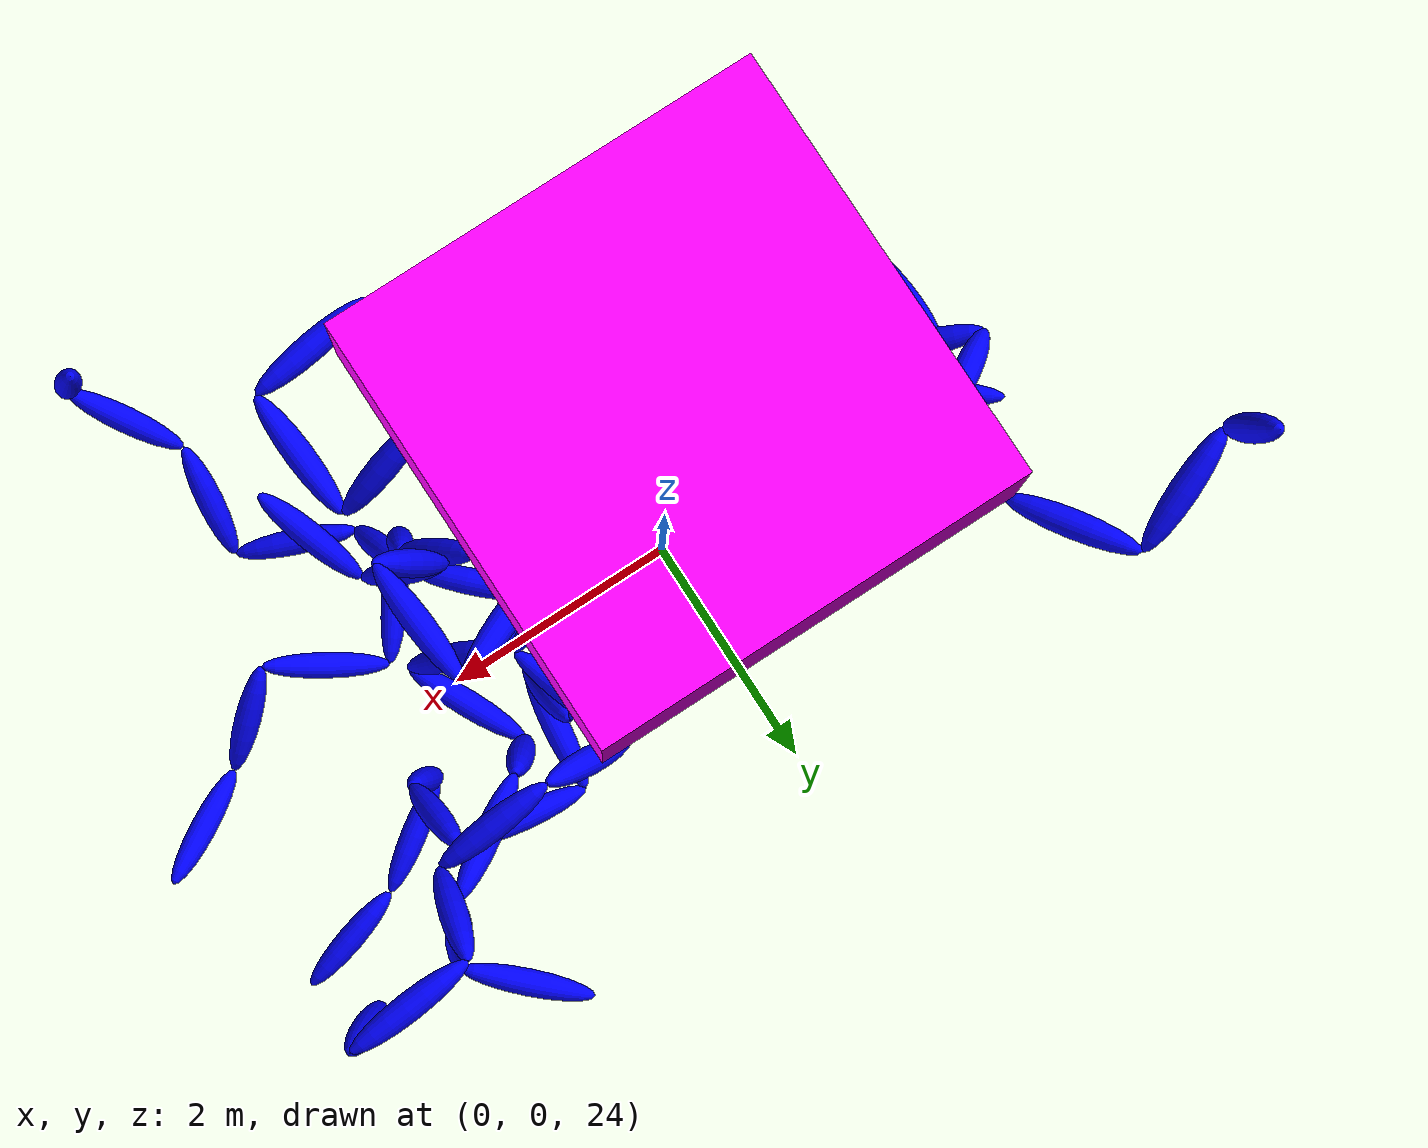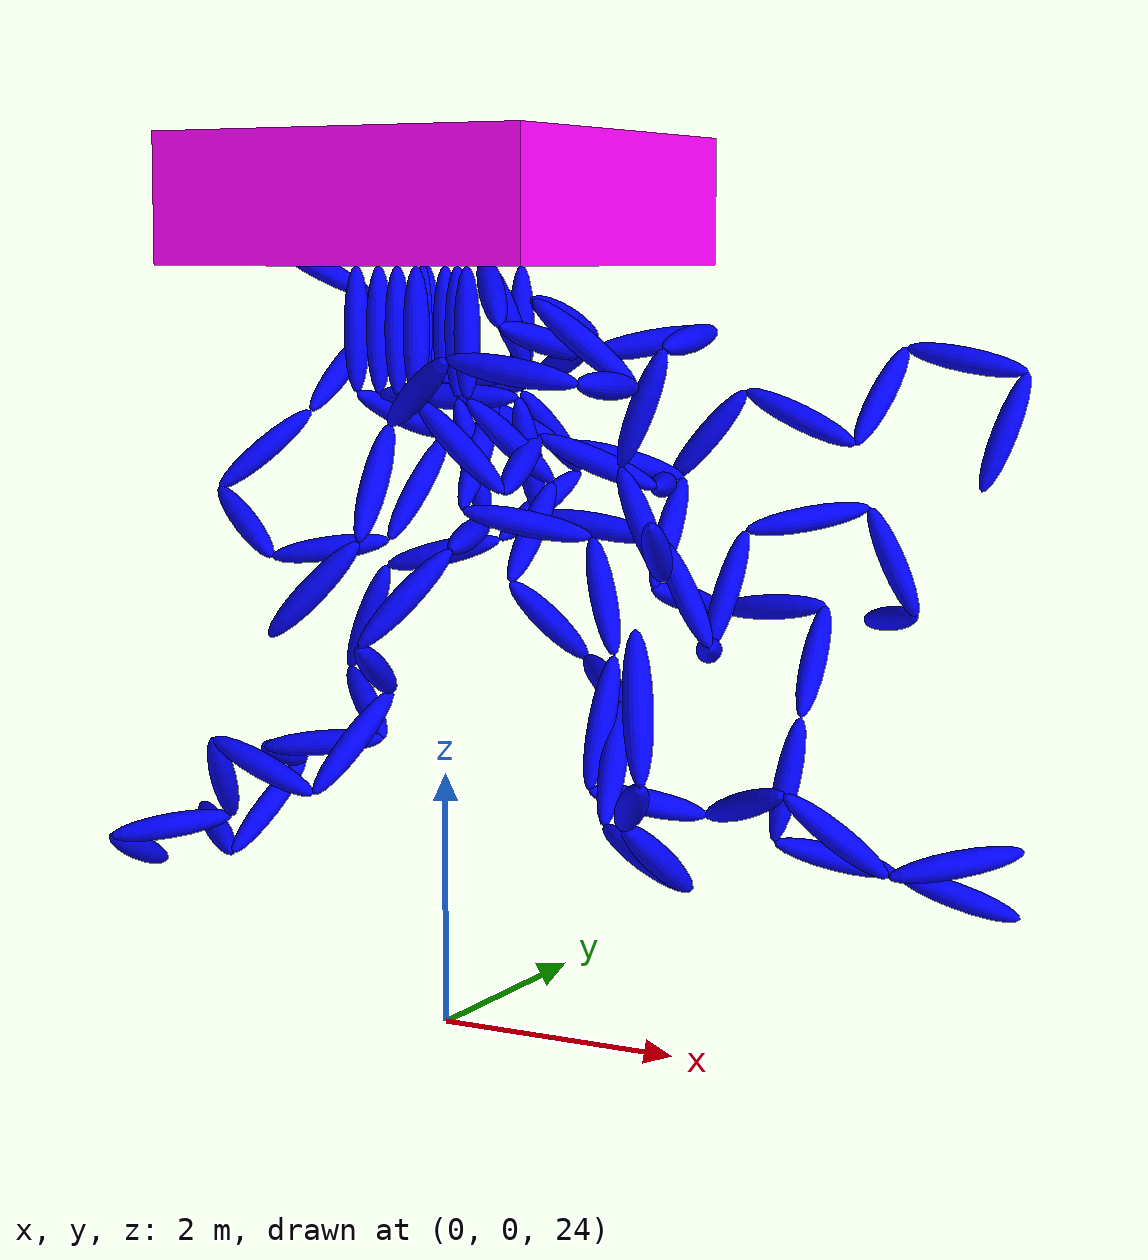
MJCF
<mujoco model="the_beginning">
<visual>
<headlight ambient="0.5 0.5 0.5"/>
</visual>
<option timestep="0.01" density="1000" viscosity="1.002e-3"/>

<worldbody>
<light diffuse=".5 .5 .5" pos="0 0 3" dir="0 0 -1"/>
<geom type="plane" size="20 20 0.1" rgba="0 .8 .2 1"/>

<body pos="0 0 30"  euler="0 0 0">
<joint type="free" axis="-1 0 0" pos="0 0 -0.5"/>
<geom type="box" size="1.58" fromto="0 0 0 0 0 1" rgba="225 0 225 1" mass="1"/>

    <body pos="-0.7457344250318846 -0.08247455923980451 0" euler="180 0 0">
        <joint name="1_elbow" type="hinge" axis="-1 0 0" pos="0 0 0" range="-50 50"/>
        <geom type="ellipsoid" size="0.1" fromto="0 0 0 0 0 1" rgba="0 0 1 1"/>

        <body pos="0 0 1" euler="67 17 86">
            <joint name="1_elbow1" type="hinge" axis="-1 0 0" pos="0 0 0" range="-50 50"/>
            <geom type="ellipsoid" size="0.1" fromto="0 0 0 0 0 1" rgba="0 0 1 1"/>

        <body pos="0 0 1" euler="49 109 31">
            <joint name="1_elbow2" type="hinge" axis="-1 0 0" pos="0 0 0" range="-50 50"/>
            <geom type="ellipsoid" size="0.1" fromto="0 0 0 0 0 1" rgba="0 0 1 1"/>

        <body pos="0 0 1" euler="27 56 23">
            <joint name="1_elbow3" type="hinge" axis="-1 0 0" pos="0 0 0" range="-50 50"/>
            <geom type="ellipsoid" size="0.1" fromto="0 0 0 0 0 1" rgba="0 0 1 1"/>

        <body pos="0 0 1" euler="44 40 9">
            <joint name="1_elbow4" type="hinge" axis="-1 0 0" pos="0 0 0" range="-50 50"/>
            <geom type="ellipsoid" size="0.1" fromto="0 0 0 0 0 1" rgba="0 0 1 1"/>

        <body pos="0 0 1" euler="92 12 75">
            <joint name="1_elbow5" type="hinge" axis="-1 0 0" pos="0 0 0" range="-50 50"/>
            <geom type="ellipsoid" size="0.1" fromto="0 0 0 0 0 1" rgba="0 0 1 1"/>

        <body pos="0 0 1" euler="7 35 16">
            <joint name="1_elbow6" type="hinge" axis="-1 0 0" pos="0 0 0" range="-50 50"/>
            <geom type="ellipsoid" size="0.1" fromto="0 0 0 0 0 1" rgba="0 0 1 1"/>

        <body pos="0 0 1" euler="31 34 34">
            <joint name="1_elbow7" type="hinge" axis="-1 0 0" pos="0 0 0" range="-50 50"/>
            <geom type="ellipsoid" size="0.1" fromto="0 0 0 0 0 1" rgba="0 0 1 1"/>

        <body pos="0 0 1" euler="40 72 91">
            <joint name="1_elbow8" type="hinge" axis="-1 0 0" pos="0 0 0" range="-50 50"/>
            <geom type="ellipsoid" size="0.1" fromto="0 0 0 0 0 1" rgba="0 0 1 1"/>

        <body pos="0 0 1" euler="36 62 29">
            <joint name="1_elbow9" type="hinge" axis="-1 0 0" pos="0 0 0" range="-50 50"/>
            <geom type="ellipsoid" size="0.1" fromto="0 0 0 0 0 1" rgba="0 0 1 1"/>

        </body>

        </body>

        </body>

        </body>

        </body>

        </body>

        </body>

        </body>

        </body>

        </body>

    <body pos="-0.23402789037711735 -0.295696606180677 0" euler="180 0 0">
        <joint name="2_elbow" type="hinge" axis="-1 0 0" pos="0 0 0" range="-50 50"/>
        <geom type="ellipsoid" size="0.1" fromto="0 0 0 0 0 1" rgba="0 0 1 1"/>

        <body pos="0 0 1" euler="92 82 106">
            <joint name="2_elbow1" type="hinge" axis="-1 0 0" pos="0 0 0" range="-50 50"/>
            <geom type="ellipsoid" size="0.1" fromto="0 0 0 0 0 1" rgba="0 0 1 1"/>

        <body pos="0 0 1" euler="108 94 51">
            <joint name="2_elbow2" type="hinge" axis="-1 0 0" pos="0 0 0" range="-50 50"/>
            <geom type="ellipsoid" size="0.1" fromto="0 0 0 0 0 1" rgba="0 0 1 1"/>

        <body pos="0 0 1" euler="111 116 25">
            <joint name="2_elbow3" type="hinge" axis="-1 0 0" pos="0 0 0" range="-50 50"/>
            <geom type="ellipsoid" size="0.1" fromto="0 0 0 0 0 1" rgba="0 0 1 1"/>

        <body pos="0 0 1" euler="5 51 71">
            <joint name="2_elbow4" type="hinge" axis="-1 0 0" pos="0 0 0" range="-50 50"/>
            <geom type="ellipsoid" size="0.1" fromto="0 0 0 0 0 1" rgba="0 0 1 1"/>

        <body pos="0 0 1" euler="20 113 12">
            <joint name="2_elbow5" type="hinge" axis="-1 0 0" pos="0 0 0" range="-50 50"/>
            <geom type="ellipsoid" size="0.1" fromto="0 0 0 0 0 1" rgba="0 0 1 1"/>

        <body pos="0 0 1" euler="70 98 36">
            <joint name="2_elbow6" type="hinge" axis="-1 0 0" pos="0 0 0" range="-50 50"/>
            <geom type="ellipsoid" size="0.1" fromto="0 0 0 0 0 1" rgba="0 0 1 1"/>

        <body pos="0 0 1" euler="16 61 24">
            <joint name="2_elbow7" type="hinge" axis="-1 0 0" pos="0 0 0" range="-50 50"/>
            <geom type="ellipsoid" size="0.1" fromto="0 0 0 0 0 1" rgba="0 0 1 1"/>

        <body pos="0 0 1" euler="60 59 17">
            <joint name="2_elbow8" type="hinge" axis="-1 0 0" pos="0 0 0" range="-50 50"/>
            <geom type="ellipsoid" size="0.1" fromto="0 0 0 0 0 1" rgba="0 0 1 1"/>

        <body pos="0 0 1" euler="34 76 90">
            <joint name="2_elbow9" type="hinge" axis="-1 0 0" pos="0 0 0" range="-50 50"/>
            <geom type="ellipsoid" size="0.1" fromto="0 0 0 0 0 1" rgba="0 0 1 1"/>

        </body>

        </body>

        </body>

        </body>

        </body>

        </body>

        </body>

        </body>

        </body>

        </body>

    <body pos="0.3314879553337018 0.6503717768372748 0" euler="180 0 0">
        <joint name="3_elbow" type="hinge" axis="-1 0 0" pos="0 0 0" range="-50 50"/>
        <geom type="ellipsoid" size="0.1" fromto="0 0 0 0 0 1" rgba="0 0 1 1"/>

        <body pos="0 0 1" euler="47 8 84">
            <joint name="3_elbow1" type="hinge" axis="-1 0 0" pos="0 0 0" range="-50 50"/>
            <geom type="ellipsoid" size="0.1" fromto="0 0 0 0 0 1" rgba="0 0 1 1"/>

        <body pos="0 0 1" euler="50 117 64">
            <joint name="3_elbow2" type="hinge" axis="-1 0 0" pos="0 0 0" range="-50 50"/>
            <geom type="ellipsoid" size="0.1" fromto="0 0 0 0 0 1" rgba="0 0 1 1"/>

        <body pos="0 0 1" euler="31 51 98">
            <joint name="3_elbow3" type="hinge" axis="-1 0 0" pos="0 0 0" range="-50 50"/>
            <geom type="ellipsoid" size="0.1" fromto="0 0 0 0 0 1" rgba="0 0 1 1"/>

        <body pos="0 0 1" euler="35 41 8">
            <joint name="3_elbow4" type="hinge" axis="-1 0 0" pos="0 0 0" range="-50 50"/>
            <geom type="ellipsoid" size="0.1" fromto="0 0 0 0 0 1" rgba="0 0 1 1"/>

        <body pos="0 0 1" euler="30 89 77">
            <joint name="3_elbow5" type="hinge" axis="-1 0 0" pos="0 0 0" range="-50 50"/>
            <geom type="ellipsoid" size="0.1" fromto="0 0 0 0 0 1" rgba="0 0 1 1"/>

        <body pos="0 0 1" euler="29 120 88">
            <joint name="3_elbow6" type="hinge" axis="-1 0 0" pos="0 0 0" range="-50 50"/>
            <geom type="ellipsoid" size="0.1" fromto="0 0 0 0 0 1" rgba="0 0 1 1"/>

        <body pos="0 0 1" euler="91 18 91">
            <joint name="3_elbow7" type="hinge" axis="-1 0 0" pos="0 0 0" range="-50 50"/>
            <geom type="ellipsoid" size="0.1" fromto="0 0 0 0 0 1" rgba="0 0 1 1"/>

        <body pos="0 0 1" euler="109 33 12">
            <joint name="3_elbow8" type="hinge" axis="-1 0 0" pos="0 0 0" range="-50 50"/>
            <geom type="ellipsoid" size="0.1" fromto="0 0 0 0 0 1" rgba="0 0 1 1"/>

        <body pos="0 0 1" euler="48 115 111">
            <joint name="3_elbow9" type="hinge" axis="-1 0 0" pos="0 0 0" range="-50 50"/>
            <geom type="ellipsoid" size="0.1" fromto="0 0 0 0 0 1" rgba="0 0 1 1"/>

        </body>

        </body>

        </body>

        </body>

        </body>

        </body>

        </body>

        </body>

        </body>

        </body>

    <body pos="-0.4562254149455524 0.5054844651929615 0" euler="180 0 0">
        <joint name="4_elbow" type="hinge" axis="-1 0 0" pos="0 0 0" range="-50 50"/>
        <geom type="ellipsoid" size="0.1" fromto="0 0 0 0 0 1" rgba="0 0 1 1"/>

        <body pos="0 0 1" euler="30 96 59">
            <joint name="4_elbow1" type="hinge" axis="-1 0 0" pos="0 0 0" range="-50 50"/>
            <geom type="ellipsoid" size="0.1" fromto="0 0 0 0 0 1" rgba="0 0 1 1"/>

        <body pos="0 0 1" euler="18 25 58">
            <joint name="4_elbow2" type="hinge" axis="-1 0 0" pos="0 0 0" range="-50 50"/>
            <geom type="ellipsoid" size="0.1" fromto="0 0 0 0 0 1" rgba="0 0 1 1"/>

        <body pos="0 0 1" euler="57 12 108">
            <joint name="4_elbow3" type="hinge" axis="-1 0 0" pos="0 0 0" range="-50 50"/>
            <geom type="ellipsoid" size="0.1" fromto="0 0 0 0 0 1" rgba="0 0 1 1"/>

        <body pos="0 0 1" euler="113 28 85">
            <joint name="4_elbow4" type="hinge" axis="-1 0 0" pos="0 0 0" range="-50 50"/>
            <geom type="ellipsoid" size="0.1" fromto="0 0 0 0 0 1" rgba="0 0 1 1"/>

        <body pos="0 0 1" euler="16 98 4">
            <joint name="4_elbow5" type="hinge" axis="-1 0 0" pos="0 0 0" range="-50 50"/>
            <geom type="ellipsoid" size="0.1" fromto="0 0 0 0 0 1" rgba="0 0 1 1"/>

        <body pos="0 0 1" euler="109 100 5">
            <joint name="4_elbow6" type="hinge" axis="-1 0 0" pos="0 0 0" range="-50 50"/>
            <geom type="ellipsoid" size="0.1" fromto="0 0 0 0 0 1" rgba="0 0 1 1"/>

        <body pos="0 0 1" euler="51 17 13">
            <joint name="4_elbow7" type="hinge" axis="-1 0 0" pos="0 0 0" range="-50 50"/>
            <geom type="ellipsoid" size="0.1" fromto="0 0 0 0 0 1" rgba="0 0 1 1"/>

        <body pos="0 0 1" euler="78 76 96">
            <joint name="4_elbow8" type="hinge" axis="-1 0 0" pos="0 0 0" range="-50 50"/>
            <geom type="ellipsoid" size="0.1" fromto="0 0 0 0 0 1" rgba="0 0 1 1"/>

        <body pos="0 0 1" euler="17 55 1">
            <joint name="4_elbow9" type="hinge" axis="-1 0 0" pos="0 0 0" range="-50 50"/>
            <geom type="ellipsoid" size="0.1" fromto="0 0 0 0 0 1" rgba="0 0 1 1"/>

        </body>

        </body>

        </body>

        </body>

        </body>

        </body>

        </body>

        </body>

        </body>

        </body>

    <body pos="0.38448746985295634 -0.4299388288982894 0" euler="180 0 0">
        <joint name="5_elbow" type="hinge" axis="-1 0 0" pos="0 0 0" range="-50 50"/>
        <geom type="ellipsoid" size="0.1" fromto="0 0 0 0 0 1" rgba="0 0 1 1"/>

        <body pos="0 0 1" euler="16 5 60">
            <joint name="5_elbow1" type="hinge" axis="-1 0 0" pos="0 0 0" range="-50 50"/>
            <geom type="ellipsoid" size="0.1" fromto="0 0 0 0 0 1" rgba="0 0 1 1"/>

        <body pos="0 0 1" euler="60 106 74">
            <joint name="5_elbow2" type="hinge" axis="-1 0 0" pos="0 0 0" range="-50 50"/>
            <geom type="ellipsoid" size="0.1" fromto="0 0 0 0 0 1" rgba="0 0 1 1"/>

        <body pos="0 0 1" euler="25 73 79">
            <joint name="5_elbow3" type="hinge" axis="-1 0 0" pos="0 0 0" range="-50 50"/>
            <geom type="ellipsoid" size="0.1" fromto="0 0 0 0 0 1" rgba="0 0 1 1"/>

        <body pos="0 0 1" euler="80 7 97">
            <joint name="5_elbow4" type="hinge" axis="-1 0 0" pos="0 0 0" range="-50 50"/>
            <geom type="ellipsoid" size="0.1" fromto="0 0 0 0 0 1" rgba="0 0 1 1"/>

        <body pos="0 0 1" euler="92 73 7">
            <joint name="5_elbow5" type="hinge" axis="-1 0 0" pos="0 0 0" range="-50 50"/>
            <geom type="ellipsoid" size="0.1" fromto="0 0 0 0 0 1" rgba="0 0 1 1"/>

        <body pos="0 0 1" euler="41 83 56">
            <joint name="5_elbow6" type="hinge" axis="-1 0 0" pos="0 0 0" range="-50 50"/>
            <geom type="ellipsoid" size="0.1" fromto="0 0 0 0 0 1" rgba="0 0 1 1"/>

        <body pos="0 0 1" euler="87 103 44">
            <joint name="5_elbow7" type="hinge" axis="-1 0 0" pos="0 0 0" range="-50 50"/>
            <geom type="ellipsoid" size="0.1" fromto="0 0 0 0 0 1" rgba="0 0 1 1"/>

        <body pos="0 0 1" euler="119 98 75">
            <joint name="5_elbow8" type="hinge" axis="-1 0 0" pos="0 0 0" range="-50 50"/>
            <geom type="ellipsoid" size="0.1" fromto="0 0 0 0 0 1" rgba="0 0 1 1"/>

        <body pos="0 0 1" euler="113 52 42">
            <joint name="5_elbow9" type="hinge" axis="-1 0 0" pos="0 0 0" range="-50 50"/>
            <geom type="ellipsoid" size="0.1" fromto="0 0 0 0 0 1" rgba="0 0 1 1"/>

        </body>

        </body>

        </body>

        </body>

        </body>

        </body>

        </body>

        </body>

        </body>

        </body>

    <body pos="-0.4765344430470234 -0.179082771382149 0" euler="180 0 0">
        <joint name="6_elbow" type="hinge" axis="-1 0 0" pos="0 0 0" range="-50 50"/>
        <geom type="ellipsoid" size="0.1" fromto="0 0 0 0 0 1" rgba="0 0 1 1"/>

        <body pos="0 0 1" euler="98 85 37">
            <joint name="6_elbow1" type="hinge" axis="-1 0 0" pos="0 0 0" range="-50 50"/>
            <geom type="ellipsoid" size="0.1" fromto="0 0 0 0 0 1" rgba="0 0 1 1"/>

        <body pos="0 0 1" euler="80 102 90">
            <joint name="6_elbow2" type="hinge" axis="-1 0 0" pos="0 0 0" range="-50 50"/>
            <geom type="ellipsoid" size="0.1" fromto="0 0 0 0 0 1" rgba="0 0 1 1"/>

        <body pos="0 0 1" euler="97 79 110">
            <joint name="6_elbow3" type="hinge" axis="-1 0 0" pos="0 0 0" range="-50 50"/>
            <geom type="ellipsoid" size="0.1" fromto="0 0 0 0 0 1" rgba="0 0 1 1"/>

        <body pos="0 0 1" euler="53 52 30">
            <joint name="6_elbow4" type="hinge" axis="-1 0 0" pos="0 0 0" range="-50 50"/>
            <geom type="ellipsoid" size="0.1" fromto="0 0 0 0 0 1" rgba="0 0 1 1"/>

        <body pos="0 0 1" euler="20 24 63">
            <joint name="6_elbow5" type="hinge" axis="-1 0 0" pos="0 0 0" range="-50 50"/>
            <geom type="ellipsoid" size="0.1" fromto="0 0 0 0 0 1" rgba="0 0 1 1"/>

        <body pos="0 0 1" euler="59 88 19">
            <joint name="6_elbow6" type="hinge" axis="-1 0 0" pos="0 0 0" range="-50 50"/>
            <geom type="ellipsoid" size="0.1" fromto="0 0 0 0 0 1" rgba="0 0 1 1"/>

        <body pos="0 0 1" euler="46 87 118">
            <joint name="6_elbow7" type="hinge" axis="-1 0 0" pos="0 0 0" range="-50 50"/>
            <geom type="ellipsoid" size="0.1" fromto="0 0 0 0 0 1" rgba="0 0 1 1"/>

        <body pos="0 0 1" euler="65 78 98">
            <joint name="6_elbow8" type="hinge" axis="-1 0 0" pos="0 0 0" range="-50 50"/>
            <geom type="ellipsoid" size="0.1" fromto="0 0 0 0 0 1" rgba="0 0 1 1"/>

        <body pos="0 0 1" euler="35 38 38">
            <joint name="6_elbow9" type="hinge" axis="-1 0 0" pos="0 0 0" range="-50 50"/>
            <geom type="ellipsoid" size="0.1" fromto="0 0 0 0 0 1" rgba="0 0 1 1"/>

        </body>

        </body>

        </body>

        </body>

        </body>

        </body>

        </body>

        </body>

        </body>

        </body>

    <body pos="-0.47100925381279635 0.46963333027612775 0" euler="180 0 0">
        <joint name="7_elbow" type="hinge" axis="-1 0 0" pos="0 0 0" range="-50 50"/>
        <geom type="ellipsoid" size="0.1" fromto="0 0 0 0 0 1" rgba="0 0 1 1"/>

        <body pos="0 0 1" euler="13 101 75">
            <joint name="7_elbow1" type="hinge" axis="-1 0 0" pos="0 0 0" range="-50 50"/>
            <geom type="ellipsoid" size="0.1" fromto="0 0 0 0 0 1" rgba="0 0 1 1"/>

        <body pos="0 0 1" euler="85 31 111">
            <joint name="7_elbow2" type="hinge" axis="-1 0 0" pos="0 0 0" range="-50 50"/>
            <geom type="ellipsoid" size="0.1" fromto="0 0 0 0 0 1" rgba="0 0 1 1"/>

        <body pos="0 0 1" euler="99 10 31">
            <joint name="7_elbow3" type="hinge" axis="-1 0 0" pos="0 0 0" range="-50 50"/>
            <geom type="ellipsoid" size="0.1" fromto="0 0 0 0 0 1" rgba="0 0 1 1"/>

        <body pos="0 0 1" euler="115 0 31">
            <joint name="7_elbow4" type="hinge" axis="-1 0 0" pos="0 0 0" range="-50 50"/>
            <geom type="ellipsoid" size="0.1" fromto="0 0 0 0 0 1" rgba="0 0 1 1"/>

        <body pos="0 0 1" euler="9 58 13">
            <joint name="7_elbow5" type="hinge" axis="-1 0 0" pos="0 0 0" range="-50 50"/>
            <geom type="ellipsoid" size="0.1" fromto="0 0 0 0 0 1" rgba="0 0 1 1"/>

        <body pos="0 0 1" euler="6 111 79">
            <joint name="7_elbow6" type="hinge" axis="-1 0 0" pos="0 0 0" range="-50 50"/>
            <geom type="ellipsoid" size="0.1" fromto="0 0 0 0 0 1" rgba="0 0 1 1"/>

        <body pos="0 0 1" euler="99 60 25">
            <joint name="7_elbow7" type="hinge" axis="-1 0 0" pos="0 0 0" range="-50 50"/>
            <geom type="ellipsoid" size="0.1" fromto="0 0 0 0 0 1" rgba="0 0 1 1"/>

        <body pos="0 0 1" euler="1 66 65">
            <joint name="7_elbow8" type="hinge" axis="-1 0 0" pos="0 0 0" range="-50 50"/>
            <geom type="ellipsoid" size="0.1" fromto="0 0 0 0 0 1" rgba="0 0 1 1"/>

        <body pos="0 0 1" euler="81 63 74">
            <joint name="7_elbow9" type="hinge" axis="-1 0 0" pos="0 0 0" range="-50 50"/>
            <geom type="ellipsoid" size="0.1" fromto="0 0 0 0 0 1" rgba="0 0 1 1"/>

        </body>

        </body>

        </body>

        </body>

        </body>

        </body>

        </body>

        </body>

        </body>

        </body>

    <body pos="0.23060947050058145 -0.7750584383928638 0" euler="180 0 0">
        <joint name="8_elbow" type="hinge" axis="-1 0 0" pos="0 0 0" range="-50 50"/>
        <geom type="ellipsoid" size="0.1" fromto="0 0 0 0 0 1" rgba="0 0 1 1"/>

        <body pos="0 0 1" euler="1 48 5">
            <joint name="8_elbow1" type="hinge" axis="-1 0 0" pos="0 0 0" range="-50 50"/>
            <geom type="ellipsoid" size="0.1" fromto="0 0 0 0 0 1" rgba="0 0 1 1"/>

        <body pos="0 0 1" euler="113 2 75">
            <joint name="8_elbow2" type="hinge" axis="-1 0 0" pos="0 0 0" range="-50 50"/>
            <geom type="ellipsoid" size="0.1" fromto="0 0 0 0 0 1" rgba="0 0 1 1"/>

        <body pos="0 0 1" euler="85 91 72">
            <joint name="8_elbow3" type="hinge" axis="-1 0 0" pos="0 0 0" range="-50 50"/>
            <geom type="ellipsoid" size="0.1" fromto="0 0 0 0 0 1" rgba="0 0 1 1"/>

        <body pos="0 0 1" euler="19 87 80">
            <joint name="8_elbow4" type="hinge" axis="-1 0 0" pos="0 0 0" range="-50 50"/>
            <geom type="ellipsoid" size="0.1" fromto="0 0 0 0 0 1" rgba="0 0 1 1"/>

        <body pos="0 0 1" euler="28 107 103">
            <joint name="8_elbow5" type="hinge" axis="-1 0 0" pos="0 0 0" range="-50 50"/>
            <geom type="ellipsoid" size="0.1" fromto="0 0 0 0 0 1" rgba="0 0 1 1"/>

        <body pos="0 0 1" euler="68 35 43">
            <joint name="8_elbow6" type="hinge" axis="-1 0 0" pos="0 0 0" range="-50 50"/>
            <geom type="ellipsoid" size="0.1" fromto="0 0 0 0 0 1" rgba="0 0 1 1"/>

        <body pos="0 0 1" euler="67 108 104">
            <joint name="8_elbow7" type="hinge" axis="-1 0 0" pos="0 0 0" range="-50 50"/>
            <geom type="ellipsoid" size="0.1" fromto="0 0 0 0 0 1" rgba="0 0 1 1"/>

        <body pos="0 0 1" euler="1 86 4">
            <joint name="8_elbow8" type="hinge" axis="-1 0 0" pos="0 0 0" range="-50 50"/>
            <geom type="ellipsoid" size="0.1" fromto="0 0 0 0 0 1" rgba="0 0 1 1"/>

        <body pos="0 0 1" euler="72 117 23">
            <joint name="8_elbow9" type="hinge" axis="-1 0 0" pos="0 0 0" range="-50 50"/>
            <geom type="ellipsoid" size="0.1" fromto="0 0 0 0 0 1" rgba="0 0 1 1"/>

        </body>

        </body>

        </body>

        </body>

        </body>

        </body>

        </body>

        </body>

        </body>

        </body>

    <body pos="0.5408079891310744 -0.5551933055904578 0" euler="180 0 0">
        <joint name="9_elbow" type="hinge" axis="-1 0 0" pos="0 0 0" range="-50 50"/>
        <geom type="ellipsoid" size="0.1" fromto="0 0 0 0 0 1" rgba="0 0 1 1"/>

        <body pos="0 0 1" euler="45 22 87">
            <joint name="9_elbow1" type="hinge" axis="-1 0 0" pos="0 0 0" range="-50 50"/>
            <geom type="ellipsoid" size="0.1" fromto="0 0 0 0 0 1" rgba="0 0 1 1"/>

        <body pos="0 0 1" euler="65 91 104">
            <joint name="9_elbow2" type="hinge" axis="-1 0 0" pos="0 0 0" range="-50 50"/>
            <geom type="ellipsoid" size="0.1" fromto="0 0 0 0 0 1" rgba="0 0 1 1"/>

        <body pos="0 0 1" euler="54 96 58">
            <joint name="9_elbow3" type="hinge" axis="-1 0 0" pos="0 0 0" range="-50 50"/>
            <geom type="ellipsoid" size="0.1" fromto="0 0 0 0 0 1" rgba="0 0 1 1"/>

        <body pos="0 0 1" euler="57 113 100">
            <joint name="9_elbow4" type="hinge" axis="-1 0 0" pos="0 0 0" range="-50 50"/>
            <geom type="ellipsoid" size="0.1" fromto="0 0 0 0 0 1" rgba="0 0 1 1"/>

        <body pos="0 0 1" euler="40 32 94">
            <joint name="9_elbow5" type="hinge" axis="-1 0 0" pos="0 0 0" range="-50 50"/>
            <geom type="ellipsoid" size="0.1" fromto="0 0 0 0 0 1" rgba="0 0 1 1"/>

        <body pos="0 0 1" euler="0 55 80">
            <joint name="9_elbow6" type="hinge" axis="-1 0 0" pos="0 0 0" range="-50 50"/>
            <geom type="ellipsoid" size="0.1" fromto="0 0 0 0 0 1" rgba="0 0 1 1"/>

        <body pos="0 0 1" euler="116 96 106">
            <joint name="9_elbow7" type="hinge" axis="-1 0 0" pos="0 0 0" range="-50 50"/>
            <geom type="ellipsoid" size="0.1" fromto="0 0 0 0 0 1" rgba="0 0 1 1"/>

        <body pos="0 0 1" euler="17 34 103">
            <joint name="9_elbow8" type="hinge" axis="-1 0 0" pos="0 0 0" range="-50 50"/>
            <geom type="ellipsoid" size="0.1" fromto="0 0 0 0 0 1" rgba="0 0 1 1"/>

        <body pos="0 0 1" euler="46 70 111">
            <joint name="9_elbow9" type="hinge" axis="-1 0 0" pos="0 0 0" range="-50 50"/>
            <geom type="ellipsoid" size="0.1" fromto="0 0 0 0 0 1" rgba="0 0 1 1"/>

        </body>

        </body>

        </body>

        </body>

        </body>

        </body>

        </body>

        </body>

        </body>

        </body>

    <body pos="-0.12828276656565263 0.24442250914968988 0" euler="180 0 0">
        <joint name="10_elbow" type="hinge" axis="-1 0 0" pos="0 0 0" range="-50 50"/>
        <geom type="ellipsoid" size="0.1" fromto="0 0 0 0 0 1" rgba="0 0 1 1"/>

        <body pos="0 0 1" euler="46 55 31">
            <joint name="10_elbow1" type="hinge" axis="-1 0 0" pos="0 0 0" range="-50 50"/>
            <geom type="ellipsoid" size="0.1" fromto="0 0 0 0 0 1" rgba="0 0 1 1"/>

        <body pos="0 0 1" euler="8 0 80">
            <joint name="10_elbow2" type="hinge" axis="-1 0 0" pos="0 0 0" range="-50 50"/>
            <geom type="ellipsoid" size="0.1" fromto="0 0 0 0 0 1" rgba="0 0 1 1"/>

        <body pos="0 0 1" euler="95 76 22">
            <joint name="10_elbow3" type="hinge" axis="-1 0 0" pos="0 0 0" range="-50 50"/>
            <geom type="ellipsoid" size="0.1" fromto="0 0 0 0 0 1" rgba="0 0 1 1"/>

        <body pos="0 0 1" euler="30 113 57">
            <joint name="10_elbow4" type="hinge" axis="-1 0 0" pos="0 0 0" range="-50 50"/>
            <geom type="ellipsoid" size="0.1" fromto="0 0 0 0 0 1" rgba="0 0 1 1"/>

        <body pos="0 0 1" euler="24 93 26">
            <joint name="10_elbow5" type="hinge" axis="-1 0 0" pos="0 0 0" range="-50 50"/>
            <geom type="ellipsoid" size="0.1" fromto="0 0 0 0 0 1" rgba="0 0 1 1"/>

        <body pos="0 0 1" euler="104 108 12">
            <joint name="10_elbow6" type="hinge" axis="-1 0 0" pos="0 0 0" range="-50 50"/>
            <geom type="ellipsoid" size="0.1" fromto="0 0 0 0 0 1" rgba="0 0 1 1"/>

        <body pos="0 0 1" euler="34 19 92">
            <joint name="10_elbow7" type="hinge" axis="-1 0 0" pos="0 0 0" range="-50 50"/>
            <geom type="ellipsoid" size="0.1" fromto="0 0 0 0 0 1" rgba="0 0 1 1"/>

        <body pos="0 0 1" euler="85 11 40">
            <joint name="10_elbow8" type="hinge" axis="-1 0 0" pos="0 0 0" range="-50 50"/>
            <geom type="ellipsoid" size="0.1" fromto="0 0 0 0 0 1" rgba="0 0 1 1"/>

        <body pos="0 0 1" euler="10 15 50">
            <joint name="10_elbow9" type="hinge" axis="-1 0 0" pos="0 0 0" range="-50 50"/>
            <geom type="ellipsoid" size="0.1" fromto="0 0 0 0 0 1" rgba="0 0 1 1"/>

        </body>

        </body>

        </body>

        </body>

        </body>

        </body>

        </body>

        </body>

        </body>

        </body>

</body>

</worldbody>

<actuator>

    <motor name="1_belly"  gear="40"  joint="1_elbow"/>

        <motor name="1_belly_1"  gear="40"  joint="1_elbow1"/>

        <motor name="1_belly_2"  gear="40"  joint="1_elbow2"/>

        <motor name="1_belly_3"  gear="40"  joint="1_elbow3"/>

        <motor name="1_belly_4"  gear="40"  joint="1_elbow4"/>

        <motor name="1_belly_5"  gear="40"  joint="1_elbow5"/>

        <motor name="1_belly_6"  gear="40"  joint="1_elbow6"/>

        <motor name="1_belly_7"  gear="40"  joint="1_elbow7"/>

        <motor name="1_belly_8"  gear="40"  joint="1_elbow8"/>

        <motor name="1_belly_9"  gear="40"  joint="1_elbow9"/>

    <motor name="2_belly"  gear="40"  joint="2_elbow"/>

        <motor name="2_belly_1"  gear="40"  joint="2_elbow1"/>

        <motor name="2_belly_2"  gear="40"  joint="2_elbow2"/>

        <motor name="2_belly_3"  gear="40"  joint="2_elbow3"/>

        <motor name="2_belly_4"  gear="40"  joint="2_elbow4"/>

        <motor name="2_belly_5"  gear="40"  joint="2_elbow5"/>

        <motor name="2_belly_6"  gear="40"  joint="2_elbow6"/>

        <motor name="2_belly_7"  gear="40"  joint="2_elbow7"/>

        <motor name="2_belly_8"  gear="40"  joint="2_elbow8"/>

        <motor name="2_belly_9"  gear="40"  joint="2_elbow9"/>

    <motor name="3_belly"  gear="40"  joint="3_elbow"/>

        <motor name="3_belly_1"  gear="40"  joint="3_elbow1"/>

        <motor name="3_belly_2"  gear="40"  joint="3_elbow2"/>

        <motor name="3_belly_3"  gear="40"  joint="3_elbow3"/>

        <motor name="3_belly_4"  gear="40"  joint="3_elbow4"/>

        <motor name="3_belly_5"  gear="40"  joint="3_elbow5"/>

        <motor name="3_belly_6"  gear="40"  joint="3_elbow6"/>

        <motor name="3_belly_7"  gear="40"  joint="3_elbow7"/>

        <motor name="3_belly_8"  gear="40"  joint="3_elbow8"/>

        <motor name="3_belly_9"  gear="40"  joint="3_elbow9"/>

    <motor name="4_belly"  gear="40"  joint="4_elbow"/>

        <motor name="4_belly_1"  gear="40"  joint="4_elbow1"/>

        <motor name="4_belly_2"  gear="40"  joint="4_elbow2"/>

        <motor name="4_belly_3"  gear="40"  joint="4_elbow3"/>

        <motor name="4_belly_4"  gear="40"  joint="4_elbow4"/>

        <motor name="4_belly_5"  gear="40"  joint="4_elbow5"/>

        <motor name="4_belly_6"  gear="40"  joint="4_elbow6"/>

        <motor name="4_belly_7"  gear="40"  joint="4_elbow7"/>

        <motor name="4_belly_8"  gear="40"  joint="4_elbow8"/>

        <motor name="4_belly_9"  gear="40"  joint="4_elbow9"/>

    <motor name="5_belly"  gear="40"  joint="5_elbow"/>

        <motor name="5_belly_1"  gear="40"  joint="5_elbow1"/>

        <motor name="5_belly_2"  gear="40"  joint="5_elbow2"/>

        <motor name="5_belly_3"  gear="40"  joint="5_elbow3"/>

        <motor name="5_belly_4"  gear="40"  joint="5_elbow4"/>

        <motor name="5_belly_5"  gear="40"  joint="5_elbow5"/>

        <motor name="5_belly_6"  gear="40"  joint="5_elbow6"/>

        <motor name="5_belly_7"  gear="40"  joint="5_elbow7"/>

        <motor name="5_belly_8"  gear="40"  joint="5_elbow8"/>

        <motor name="5_belly_9"  gear="40"  joint="5_elbow9"/>

    <motor name="6_belly"  gear="40"  joint="6_elbow"/>

        <motor name="6_belly_1"  gear="40"  joint="6_elbow1"/>

        <motor name="6_belly_2"  gear="40"  joint="6_elbow2"/>

        <motor name="6_belly_3"  gear="40"  joint="6_elbow3"/>

        <motor name="6_belly_4"  gear="40"  joint="6_elbow4"/>

        <motor name="6_belly_5"  gear="40"  joint="6_elbow5"/>

        <motor name="6_belly_6"  gear="40"  joint="6_elbow6"/>

        <motor name="6_belly_7"  gear="40"  joint="6_elbow7"/>

        <motor name="6_belly_8"  gear="40"  joint="6_elbow8"/>

        <motor name="6_belly_9"  gear="40"  joint="6_elbow9"/>

    <motor name="7_belly"  gear="40"  joint="7_elbow"/>

        <motor name="7_belly_1"  gear="40"  joint="7_elbow1"/>

        <motor name="7_belly_2"  gear="40"  joint="7_elbow2"/>

        <motor name="7_belly_3"  gear="40"  joint="7_elbow3"/>

        <motor name="7_belly_4"  gear="40"  joint="7_elbow4"/>

        <motor name="7_belly_5"  gear="40"  joint="7_elbow5"/>

        <motor name="7_belly_6"  gear="40"  joint="7_elbow6"/>

        <motor name="7_belly_7"  gear="40"  joint="7_elbow7"/>

        <motor name="7_belly_8"  gear="40"  joint="7_elbow8"/>

        <motor name="7_belly_9"  gear="40"  joint="7_elbow9"/>

    <motor name="8_belly"  gear="40"  joint="8_elbow"/>

        <motor name="8_belly_1"  gear="40"  joint="8_elbow1"/>

        <motor name="8_belly_2"  gear="40"  joint="8_elbow2"/>

        <motor name="8_belly_3"  gear="40"  joint="8_elbow3"/>

        <motor name="8_belly_4"  gear="40"  joint="8_elbow4"/>

        <motor name="8_belly_5"  gear="40"  joint="8_elbow5"/>

        <motor name="8_belly_6"  gear="40"  joint="8_elbow6"/>

        <motor name="8_belly_7"  gear="40"  joint="8_elbow7"/>

        <motor name="8_belly_8"  gear="40"  joint="8_elbow8"/>

        <motor name="8_belly_9"  gear="40"  joint="8_elbow9"/>

    <motor name="9_belly"  gear="40"  joint="9_elbow"/>

        <motor name="9_belly_1"  gear="40"  joint="9_elbow1"/>

        <motor name="9_belly_2"  gear="40"  joint="9_elbow2"/>

        <motor name="9_belly_3"  gear="40"  joint="9_elbow3"/>

        <motor name="9_belly_4"  gear="40"  joint="9_elbow4"/>

        <motor name="9_belly_5"  gear="40"  joint="9_elbow5"/>

        <motor name="9_belly_6"  gear="40"  joint="9_elbow6"/>

        <motor name="9_belly_7"  gear="40"  joint="9_elbow7"/>

        <motor name="9_belly_8"  gear="40"  joint="9_elbow8"/>

        <motor name="9_belly_9"  gear="40"  joint="9_elbow9"/>

    <motor name="10_belly"  gear="40"  joint="10_elbow"/>

        <motor name="10_belly_1"  gear="40"  joint="10_elbow1"/>

        <motor name="10_belly_2"  gear="40"  joint="10_elbow2"/>

        <motor name="10_belly_3"  gear="40"  joint="10_elbow3"/>

        <motor name="10_belly_4"  gear="40"  joint="10_elbow4"/>

        <motor name="10_belly_5"  gear="40"  joint="10_elbow5"/>

        <motor name="10_belly_6"  gear="40"  joint="10_elbow6"/>

        <motor name="10_belly_7"  gear="40"  joint="10_elbow7"/>

        <motor name="10_belly_8"  gear="40"  joint="10_elbow8"/>

        <motor name="10_belly_9"  gear="40"  joint="10_elbow9"/>

</actuator>

</mujoco>
